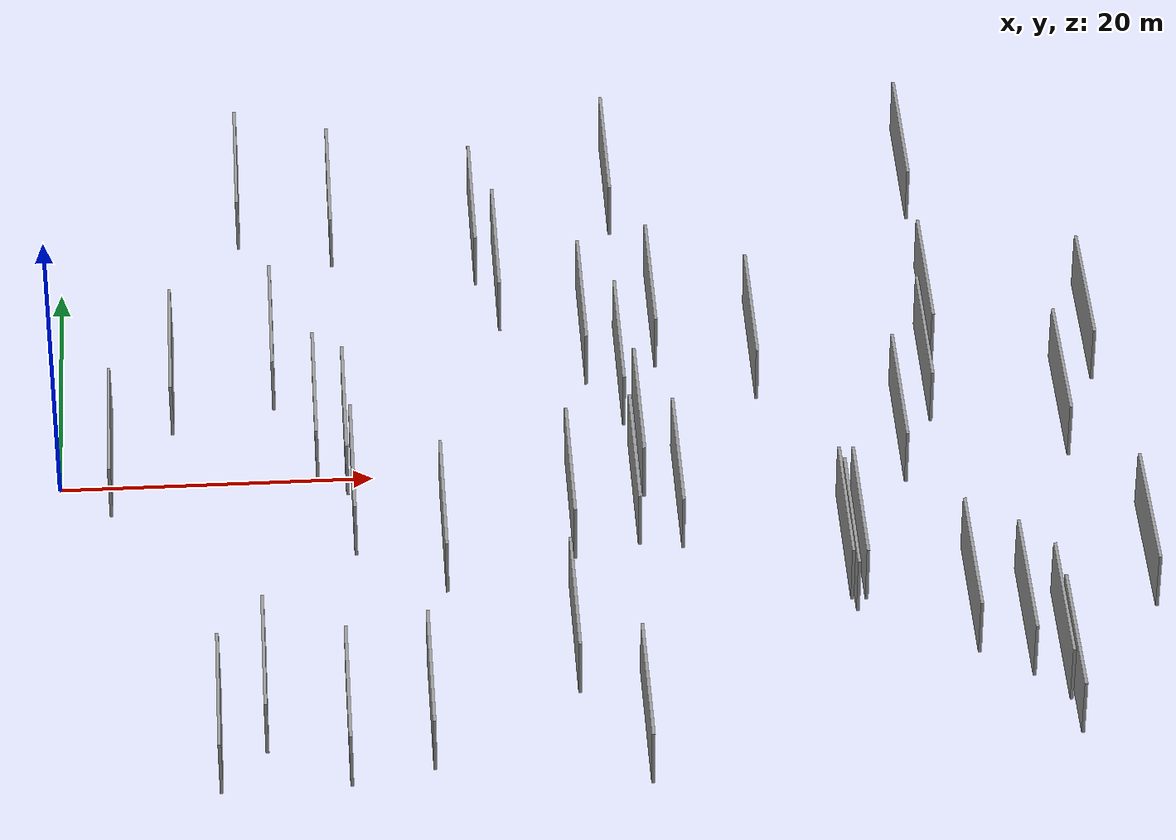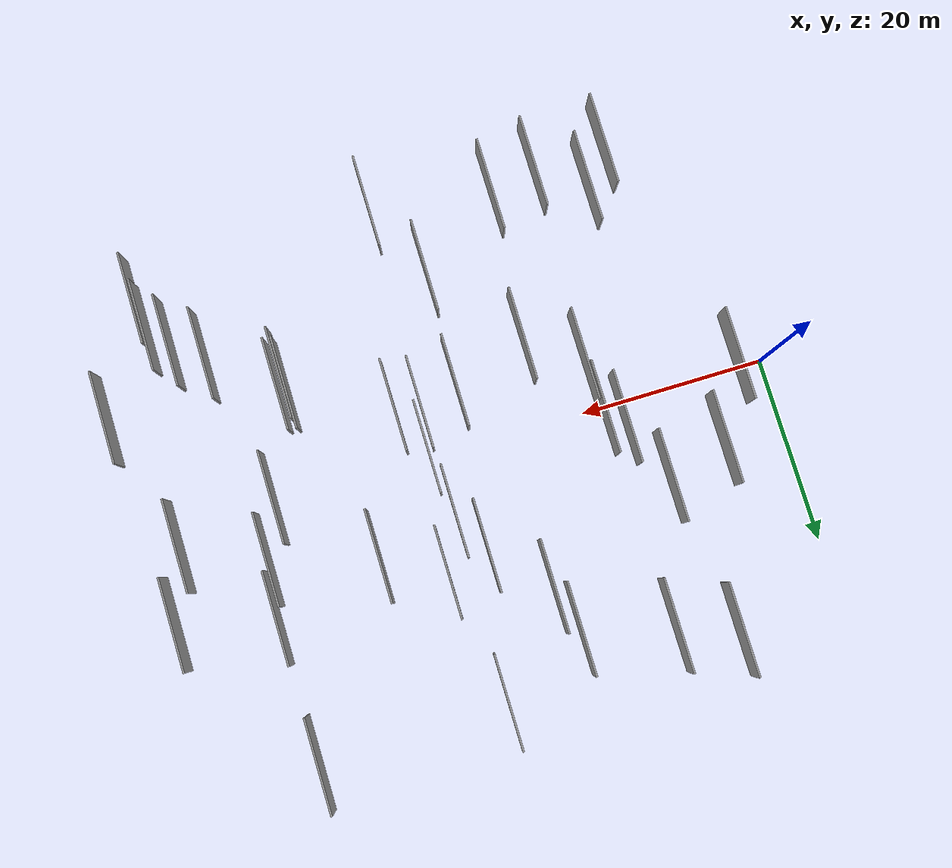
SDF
<sdf version="1.6">
 <world name="default">
  <scene>
   <sky><clouds><speed>12</speed></clouds></sky>
   <ambient>0.4 0.4 0.4 1</ambient>
   <background>0.7 0.7 0.7 1</background>
   <shadows>1</shadows>
  </scene>
  <gravity>0 0 -9.8066</gravity>
  <magnetic_field>6e-06 2.3e-05 -4.2e-05</magnetic_field>
  <physics default="0" name="default_physics" type="ode">
   <ode>
    <solver>
     <type>quick</type>
     <iters>10</iters>
     <sor>1.0</sor>
     <use_dynamic_moi_rescaling>0</use_dynamic_moi_rescaling>
    </solver>
    <constraints>
     <cfm>0</cfm>
     <erp>0.2</erp>
     <contact_max_correcting_vel>100</contact_max_correcting_vel>
     <contact_surface_layer>0.001</contact_surface_layer>
    </constraints>
   </ode>
   <max_step_size>0.004</max_step_size>
   <real_time_factor>1</real_time_factor>
   <real_time_update_rate>250</real_time_update_rate>
  </physics>
  <light name="sun" type="directional">
   <pose>0 0 10 0 0 0</pose>
   <diffuse>0.8 0.8 0.8 1</diffuse>
   <specular>0.2 0.2 0.2 1</specular>
   <attenuation>
    <range>1000</range>
    <constant>0.9</constant>
    <linear>0.01</linear>
    <quadratic>0.001</quadratic>
   </attenuation>
   <direction>-0.5 0.1 -0.9</direction>
  </light>
  <model name="grey_wall_1">
   <static>1</static>
   <pose>49.2912 -11.3729 2.5 0.000000 0.000000 1.570796</pose>
   <link name="link">
    <pose>0 0 2.00 0 0 0</pose>
    <collision name="collision"><geometry><box><size>10.00 0.2 4.00</size></box></geometry></collision>
    <visual name="visual">
     <cast_shadows>0</cast_shadows>
     <geometry><box><size>10.00 0.2 4.00</size></box></geometry>
     <material>
      <script>
       <uri>model://grey_wall/materials/scripts</uri>
       <uri>model://grey_wall/materials/textures</uri>
       <name>vrc/grey_wall</name>
      </script>
     </material>
    </visual>
   </link>
  </model>
  <model name="grey_wall_2">
   <static>1</static>
   <pose>36.4695 -5.4138 2.5 0.000000 0.000000 1.570796</pose>
   <link name="link">
    <pose>0 0 2.00 0 0 0</pose>
    <collision name="collision"><geometry><box><size>10.00 0.2 4.00</size></box></geometry></collision>
    <visual name="visual">
     <cast_shadows>0</cast_shadows>
     <geometry><box><size>10.00 0.2 4.00</size></box></geometry>
     <material>
      <script>
       <uri>model://grey_wall/materials/scripts</uri>
       <uri>model://grey_wall/materials/textures</uri>
       <name>vrc/grey_wall</name>
      </script>
     </material>
    </visual>
   </link>
  </model>
  <model name="grey_wall_3">
   <static>1</static>
   <pose>44.9676 8.5489 2.5 0.000000 0.000000 1.570796</pose>
   <link name="link">
    <pose>0 0 2.00 0 0 0</pose>
    <collision name="collision"><geometry><box><size>10.00 0.2 4.00</size></box></geometry></collision>
    <visual name="visual">
     <cast_shadows>0</cast_shadows>
     <geometry><box><size>10.00 0.2 4.00</size></box></geometry>
     <material>
      <script>
       <uri>model://grey_wall/materials/scripts</uri>
       <uri>model://grey_wall/materials/textures</uri>
       <name>vrc/grey_wall</name>
      </script>
     </material>
    </visual>
   </link>
  </model>
  <model name="grey_wall_4">
   <static>1</static>
   <pose>7.3157 7.1480 2.5 0.000000 0.000000 1.570796</pose>
   <link name="link">
    <pose>0 0 2.00 0 0 0</pose>
    <collision name="collision"><geometry><box><size>10.00 0.2 4.00</size></box></geometry></collision>
    <visual name="visual">
     <cast_shadows>0</cast_shadows>
     <geometry><box><size>10.00 0.2 4.00</size></box></geometry>
     <material>
      <script>
       <uri>model://grey_wall/materials/scripts</uri>
       <uri>model://grey_wall/materials/textures</uri>
       <name>vrc/grey_wall</name>
      </script>
     </material>
    </visual>
   </link>
  </model>
  <model name="grey_wall_5">
   <static>1</static>
   <pose>35.7856 -27.3494 2.5 0.000000 0.000000 1.570796</pose>
   <link name="link">
    <pose>0 0 2.00 0 0 0</pose>
    <collision name="collision"><geometry><box><size>10.00 0.2 4.00</size></box></geometry></collision>
    <visual name="visual">
     <cast_shadows>0</cast_shadows>
     <geometry><box><size>10.00 0.2 4.00</size></box></geometry>
     <material>
      <script>
       <uri>model://grey_wall/materials/scripts</uri>
       <uri>model://grey_wall/materials/textures</uri>
       <name>vrc/grey_wall</name>
      </script>
     </material>
    </visual>
   </link>
  </model>
  <model name="grey_wall_6">
   <static>1</static>
   <pose>3.3829 -0.7247 2.5 0.000000 0.000000 1.570796</pose>
   <link name="link">
    <pose>0 0 2.00 0 0 0</pose>
    <collision name="collision"><geometry><box><size>10.00 0.2 4.00</size></box></geometry></collision>
    <visual name="visual">
     <cast_shadows>0</cast_shadows>
     <geometry><box><size>10.00 0.2 4.00</size></box></geometry>
     <material>
      <script>
       <uri>model://grey_wall/materials/scripts</uri>
       <uri>model://grey_wall/materials/textures</uri>
       <name>vrc/grey_wall</name>
      </script>
     </material>
    </visual>
   </link>
  </model>
  <model name="grey_wall_7">
   <static>1</static>
   <pose>56.6194 11.5562 2.5 0.000000 0.000000 1.570796</pose>
   <link name="link">
    <pose>0 0 2.00 0 0 0</pose>
    <collision name="collision"><geometry><box><size>10.00 0.2 4.00</size></box></geometry></collision>
    <visual name="visual">
     <cast_shadows>0</cast_shadows>
     <geometry><box><size>10.00 0.2 4.00</size></box></geometry>
     <material>
      <script>
       <uri>model://grey_wall/materials/scripts</uri>
       <uri>model://grey_wall/materials/textures</uri>
       <name>vrc/grey_wall</name>
      </script>
     </material>
    </visual>
   </link>
  </model>
  <model name="grey_wall_8">
   <static>1</static>
   <pose>18.6774 -5.3102 2.5 0.000000 0.000000 1.570796</pose>
   <link name="link">
    <pose>0 0 2.00 0 0 0</pose>
    <collision name="collision"><geometry><box><size>10.00 0.2 4.00</size></box></geometry></collision>
    <visual name="visual">
     <cast_shadows>0</cast_shadows>
     <geometry><box><size>10.00 0.2 4.00</size></box></geometry>
     <material>
      <script>
       <uri>model://grey_wall/materials/scripts</uri>
       <uri>model://grey_wall/materials/textures</uri>
       <name>vrc/grey_wall</name>
      </script>
     </material>
    </visual>
   </link>
  </model>
  <model name="grey_wall_9">
   <static>1</static>
   <pose>50.1798 -11.4705 2.5 0.000000 0.000000 1.570796</pose>
   <link name="link">
    <pose>0 0 2.00 0 0 0</pose>
    <collision name="collision"><geometry><box><size>10.00 0.2 4.00</size></box></geometry></collision>
    <visual name="visual">
     <cast_shadows>0</cast_shadows>
     <geometry><box><size>10.00 0.2 4.00</size></box></geometry>
     <material>
      <script>
       <uri>model://grey_wall/materials/scripts</uri>
       <uri>model://grey_wall/materials/textures</uri>
       <name>vrc/grey_wall</name>
      </script>
     </material>
    </visual>
   </link>
  </model>
  <model name="grey_wall_10">
   <static>1</static>
   <pose>62.0942 -24.4419 2.5 0.000000 0.000000 1.570796</pose>
   <link name="link">
    <pose>0 0 2.00 0 0 0</pose>
    <collision name="collision"><geometry><box><size>10.00 0.2 4.00</size></box></geometry></collision>
    <visual name="visual">
     <cast_shadows>0</cast_shadows>
     <geometry><box><size>10.00 0.2 4.00</size></box></geometry>
     <material>
      <script>
       <uri>model://grey_wall/materials/scripts</uri>
       <uri>model://grey_wall/materials/textures</uri>
       <name>vrc/grey_wall</name>
      </script>
     </material>
    </visual>
   </link>
  </model>
  <model name="grey_wall_11">
   <static>1</static>
   <pose>55.9603 5.5726 2.5 0.000000 0.000000 1.570796</pose>
   <link name="link">
    <pose>0 0 2.00 0 0 0</pose>
    <collision name="collision"><geometry><box><size>10.00 0.2 4.00</size></box></geometry></collision>
    <visual name="visual">
     <cast_shadows>0</cast_shadows>
     <geometry><box><size>10.00 0.2 4.00</size></box></geometry>
     <material>
      <script>
       <uri>model://grey_wall/materials/scripts</uri>
       <uri>model://grey_wall/materials/textures</uri>
       <name>vrc/grey_wall</name>
      </script>
     </material>
    </visual>
   </link>
  </model>
  <model name="grey_wall_12">
   <static>1</static>
   <pose>59.7716 -19.1227 2.5 0.000000 0.000000 1.570796</pose>
   <link name="link">
    <pose>0 0 2.00 0 0 0</pose>
    <collision name="collision"><geometry><box><size>10.00 0.2 4.00</size></box></geometry></collision>
    <visual name="visual">
     <cast_shadows>0</cast_shadows>
     <geometry><box><size>10.00 0.2 4.00</size></box></geometry>
     <material>
      <script>
       <uri>model://grey_wall/materials/scripts</uri>
       <uri>model://grey_wall/materials/textures</uri>
       <name>vrc/grey_wall</name>
      </script>
     </material>
    </visual>
   </link>
  </model>
  <model name="grey_wall_13">
   <static>1</static>
   <pose>66.8213 9.1804 2.5 0.000000 0.000000 1.570796</pose>
   <link name="link">
    <pose>0 0 2.00 0 0 0</pose>
    <collision name="collision"><geometry><box><size>10.00 0.2 4.00</size></box></geometry></collision>
    <visual name="visual">
     <cast_shadows>0</cast_shadows>
     <geometry><box><size>10.00 0.2 4.00</size></box></geometry>
     <material>
      <script>
       <uri>model://grey_wall/materials/scripts</uri>
       <uri>model://grey_wall/materials/textures</uri>
       <name>vrc/grey_wall</name>
      </script>
     </material>
    </visual>
   </link>
  </model>
  <model name="grey_wall_14">
   <static>1</static>
   <pose>61.7658 -21.4161 2.5 0.000000 0.000000 1.570796</pose>
   <link name="link">
    <pose>0 0 2.00 0 0 0</pose>
    <collision name="collision"><geometry><box><size>10.00 0.2 4.00</size></box></geometry></collision>
    <visual name="visual">
     <cast_shadows>0</cast_shadows>
     <geometry><box><size>10.00 0.2 4.00</size></box></geometry>
     <material>
      <script>
       <uri>model://grey_wall/materials/scripts</uri>
       <uri>model://grey_wall/materials/textures</uri>
       <name>vrc/grey_wall</name>
      </script>
     </material>
    </visual>
   </link>
  </model>
  <model name="grey_wall_15">
   <static>1</static>
   <pose>53.7543 -0.3643 2.5 0.000000 0.000000 1.570796</pose>
   <link name="link">
    <pose>0 0 2.00 0 0 0</pose>
    <collision name="collision"><geometry><box><size>10.00 0.2 4.00</size></box></geometry></collision>
    <visual name="visual">
     <cast_shadows>0</cast_shadows>
     <geometry><box><size>10.00 0.2 4.00</size></box></geometry>
     <material>
      <script>
       <uri>model://grey_wall/materials/scripts</uri>
       <uri>model://grey_wall/materials/textures</uri>
       <name>vrc/grey_wall</name>
      </script>
     </material>
    </visual>
   </link>
  </model>
  <model name="grey_wall_16">
   <static>1</static>
   <pose>18.3371 0.5597 2.5 0.000000 0.000000 1.570796</pose>
   <link name="link">
    <pose>0 0 2.00 0 0 0</pose>
    <collision name="collision"><geometry><box><size>10.00 0.2 4.00</size></box></geometry></collision>
    <visual name="visual">
     <cast_shadows>0</cast_shadows>
     <geometry><box><size>10.00 0.2 4.00</size></box></geometry>
     <material>
      <script>
       <uri>model://grey_wall/materials/scripts</uri>
       <uri>model://grey_wall/materials/textures</uri>
       <name>vrc/grey_wall</name>
      </script>
     </material>
    </visual>
   </link>
  </model>
  <model name="grey_wall_17">
   <static>1</static>
   <pose>12.7365 -23.2910 2.5 0.000000 0.000000 1.570796</pose>
   <link name="link">
    <pose>0 0 2.00 0 0 0</pose>
    <collision name="collision"><geometry><box><size>10.00 0.2 4.00</size></box></geometry></collision>
    <visual name="visual">
     <cast_shadows>0</cast_shadows>
     <geometry><box><size>10.00 0.2 4.00</size></box></geometry>
     <material>
      <script>
       <uri>model://grey_wall/materials/scripts</uri>
       <uri>model://grey_wall/materials/textures</uri>
       <name>vrc/grey_wall</name>
      </script>
     </material>
    </visual>
   </link>
  </model>
  <model name="grey_wall_18">
   <static>1</static>
   <pose>36.5861 26.3252 2.5 0.000000 0.000000 1.570796</pose>
   <link name="link">
    <pose>0 0 2.00 0 0 0</pose>
    <collision name="collision"><geometry><box><size>10.00 0.2 4.00</size></box></geometry></collision>
    <visual name="visual">
     <cast_shadows>0</cast_shadows>
     <geometry><box><size>10.00 0.2 4.00</size></box></geometry>
     <material>
      <script>
       <uri>model://grey_wall/materials/scripts</uri>
       <uri>model://grey_wall/materials/textures</uri>
       <name>vrc/grey_wall</name>
      </script>
     </material>
    </visual>
   </link>
  </model>
  <model name="grey_wall_19">
   <static>1</static>
   <pose>11.8592 26.2166 2.5 0.000000 0.000000 1.570796</pose>
   <link name="link">
    <pose>0 0 2.00 0 0 0</pose>
    <collision name="collision"><geometry><box><size>10.00 0.2 4.00</size></box></geometry></collision>
    <visual name="visual">
     <cast_shadows>0</cast_shadows>
     <geometry><box><size>10.00 0.2 4.00</size></box></geometry>
     <material>
      <script>
       <uri>model://grey_wall/materials/scripts</uri>
       <uri>model://grey_wall/materials/textures</uri>
       <name>vrc/grey_wall</name>
      </script>
     </material>
    </visual>
   </link>
  </model>
  <model name="grey_wall_20">
   <static>1</static>
   <pose>56.5438 26.7962 2.5 0.000000 0.000000 1.570796</pose>
   <link name="link">
    <pose>0 0 2.00 0 0 0</pose>
    <collision name="collision"><geometry><box><size>10.00 0.2 4.00</size></box></geometry></collision>
    <visual name="visual">
     <cast_shadows>0</cast_shadows>
     <geometry><box><size>10.00 0.2 4.00</size></box></geometry>
     <material>
      <script>
       <uri>model://grey_wall/materials/scripts</uri>
       <uri>model://grey_wall/materials/textures</uri>
       <name>vrc/grey_wall</name>
      </script>
     </material>
    </visual>
   </link>
  </model>
  <model name="grey_wall_21">
   <static>1</static>
   <pose>64.3888 1.6308 2.5 0.000000 0.000000 1.570796</pose>
   <link name="link">
    <pose>0 0 2.00 0 0 0</pose>
    <collision name="collision"><geometry><box><size>10.00 0.2 4.00</size></box></geometry></collision>
    <visual name="visual">
     <cast_shadows>0</cast_shadows>
     <geometry><box><size>10.00 0.2 4.00</size></box></geometry>
     <material>
      <script>
       <uri>model://grey_wall/materials/scripts</uri>
       <uri>model://grey_wall/materials/textures</uri>
       <name>vrc/grey_wall</name>
      </script>
     </material>
    </visual>
   </link>
  </model>
  <model name="grey_wall_22">
   <static>1</static>
   <pose>68.1017 -13.1992 2.5 0.000000 0.000000 1.570796</pose>
   <link name="link">
    <pose>0 0 2.00 0 0 0</pose>
    <collision name="collision"><geometry><box><size>10.00 0.2 4.00</size></box></geometry></collision>
    <visual name="visual">
     <cast_shadows>0</cast_shadows>
     <geometry><box><size>10.00 0.2 4.00</size></box></geometry>
     <material>
      <script>
       <uri>model://grey_wall/materials/scripts</uri>
       <uri>model://grey_wall/materials/textures</uri>
       <name>vrc/grey_wall</name>
      </script>
     </material>
    </visual>
   </link>
  </model>
  <model name="grey_wall_23">
   <static>1</static>
   <pose>37.0577 -0.7599 2.5 0.000000 0.000000 1.570796</pose>
   <link name="link">
    <pose>0 0 2.00 0 0 0</pose>
    <collision name="collision"><geometry><box><size>10.00 0.2 4.00</size></box></geometry></collision>
    <visual name="visual">
     <cast_shadows>0</cast_shadows>
     <geometry><box><size>10.00 0.2 4.00</size></box></geometry>
     <material>
      <script>
       <uri>model://grey_wall/materials/scripts</uri>
       <uri>model://grey_wall/materials/textures</uri>
       <name>vrc/grey_wall</name>
      </script>
     </material>
    </visual>
   </link>
  </model>
  <model name="grey_wall_24">
   <static>1</static>
   <pose>49.5408 -12.4997 2.5 0.000000 0.000000 1.570796</pose>
   <link name="link">
    <pose>0 0 2.00 0 0 0</pose>
    <collision name="collision"><geometry><box><size>10.00 0.2 4.00</size></box></geometry></collision>
    <visual name="visual">
     <cast_shadows>0</cast_shadows>
     <geometry><box><size>10.00 0.2 4.00</size></box></geometry>
     <material>
      <script>
       <uri>model://grey_wall/materials/scripts</uri>
       <uri>model://grey_wall/materials/textures</uri>
       <name>vrc/grey_wall</name>
      </script>
     </material>
    </visual>
   </link>
  </model>
  <model name="grey_wall_25">
   <static>1</static>
   <pose>34.1021 10.6718 2.5 0.000000 0.000000 1.570796</pose>
   <link name="link">
    <pose>0 0 2.00 0 0 0</pose>
    <collision name="collision"><geometry><box><size>10.00 0.2 4.00</size></box></geometry></collision>
    <visual name="visual">
     <cast_shadows>0</cast_shadows>
     <geometry><box><size>10.00 0.2 4.00</size></box></geometry>
     <material>
      <script>
       <uri>model://grey_wall/materials/scripts</uri>
       <uri>model://grey_wall/materials/textures</uri>
       <name>vrc/grey_wall</name>
      </script>
     </material>
    </visual>
   </link>
  </model>
  <model name="grey_wall_26">
   <static>1</static>
   <pose>16.4777 2.1630 2.5 0.000000 0.000000 1.570796</pose>
   <link name="link">
    <pose>0 0 2.00 0 0 0</pose>
    <collision name="collision"><geometry><box><size>10.00 0.2 4.00</size></box></geometry></collision>
    <visual name="visual">
     <cast_shadows>0</cast_shadows>
     <geometry><box><size>10.00 0.2 4.00</size></box></geometry>
     <material>
      <script>
       <uri>model://grey_wall/materials/scripts</uri>
       <uri>model://grey_wall/materials/textures</uri>
       <name>vrc/grey_wall</name>
      </script>
     </material>
    </visual>
   </link>
  </model>
  <model name="grey_wall_27">
   <static>1</static>
   <pose>28.7744 16.5775 2.5 0.000000 0.000000 1.570796</pose>
   <link name="link">
    <pose>0 0 2.00 0 0 0</pose>
    <collision name="collision"><geometry><box><size>10.00 0.2 4.00</size></box></geometry></collision>
    <visual name="visual">
     <cast_shadows>0</cast_shadows>
     <geometry><box><size>10.00 0.2 4.00</size></box></geometry>
     <material>
      <script>
       <uri>model://grey_wall/materials/scripts</uri>
       <uri>model://grey_wall/materials/textures</uri>
       <name>vrc/grey_wall</name>
      </script>
     </material>
    </visual>
   </link>
  </model>
  <model name="grey_wall_28">
   <static>1</static>
   <pose>13.8453 9.2939 2.5 0.000000 0.000000 1.570796</pose>
   <link name="link">
    <pose>0 0 2.00 0 0 0</pose>
    <collision name="collision"><geometry><box><size>10.00 0.2 4.00</size></box></geometry></collision>
    <visual name="visual">
     <cast_shadows>0</cast_shadows>
     <geometry><box><size>10.00 0.2 4.00</size></box></geometry>
     <material>
      <script>
       <uri>model://grey_wall/materials/scripts</uri>
       <uri>model://grey_wall/materials/textures</uri>
       <name>vrc/grey_wall</name>
      </script>
     </material>
    </visual>
   </link>
  </model>
  <model name="grey_wall_29">
   <static>1</static>
   <pose>24.2351 -9.1933 2.5 0.000000 0.000000 1.570796</pose>
   <link name="link">
    <pose>0 0 2.00 0 0 0</pose>
    <collision name="collision"><geometry><box><size>10.00 0.2 4.00</size></box></geometry></collision>
    <visual name="visual">
     <cast_shadows>0</cast_shadows>
     <geometry><box><size>10.00 0.2 4.00</size></box></geometry>
     <material>
      <script>
       <uri>model://grey_wall/materials/scripts</uri>
       <uri>model://grey_wall/materials/textures</uri>
       <name>vrc/grey_wall</name>
      </script>
     </material>
    </visual>
   </link>
  </model>
  <model name="grey_wall_30">
   <static>1</static>
   <pose>36.2458 6.3484 2.5 0.000000 0.000000 1.570796</pose>
   <link name="link">
    <pose>0 0 2.00 0 0 0</pose>
    <collision name="collision"><geometry><box><size>10.00 0.2 4.00</size></box></geometry></collision>
    <visual name="visual">
     <cast_shadows>0</cast_shadows>
     <geometry><box><size>10.00 0.2 4.00</size></box></geometry>
     <material>
      <script>
       <uri>model://grey_wall/materials/scripts</uri>
       <uri>model://grey_wall/materials/textures</uri>
       <name>vrc/grey_wall</name>
      </script>
     </material>
    </visual>
   </link>
  </model>
  <model name="grey_wall_31">
   <static>1</static>
   <pose>22.7909 -25.3571 2.5 0.000000 0.000000 1.570796</pose>
   <link name="link">
    <pose>0 0 2.00 0 0 0</pose>
    <collision name="collision"><geometry><box><size>10.00 0.2 4.00</size></box></geometry></collision>
    <visual name="visual">
     <cast_shadows>0</cast_shadows>
     <geometry><box><size>10.00 0.2 4.00</size></box></geometry>
     <material>
      <script>
       <uri>model://grey_wall/materials/scripts</uri>
       <uri>model://grey_wall/materials/textures</uri>
       <name>vrc/grey_wall</name>
      </script>
     </material>
    </visual>
   </link>
  </model>
  <model name="grey_wall_32">
   <static>1</static>
   <pose>56.6520 -16.8185 2.5 0.000000 0.000000 1.570796</pose>
   <link name="link">
    <pose>0 0 2.00 0 0 0</pose>
    <collision name="collision"><geometry><box><size>10.00 0.2 4.00</size></box></geometry></collision>
    <visual name="visual">
     <cast_shadows>0</cast_shadows>
     <geometry><box><size>10.00 0.2 4.00</size></box></geometry>
     <material>
      <script>
       <uri>model://grey_wall/materials/scripts</uri>
       <uri>model://grey_wall/materials/textures</uri>
       <name>vrc/grey_wall</name>
      </script>
     </material>
    </visual>
   </link>
  </model>
  <model name="grey_wall_33">
   <static>1</static>
   <pose>32.3443 -6.5044 2.5 0.000000 0.000000 1.570796</pose>
   <link name="link">
    <pose>0 0 2.00 0 0 0</pose>
    <collision name="collision"><geometry><box><size>10.00 0.2 4.00</size></box></geometry></collision>
    <visual name="visual">
     <cast_shadows>0</cast_shadows>
     <geometry><box><size>10.00 0.2 4.00</size></box></geometry>
     <material>
      <script>
       <uri>model://grey_wall/materials/scripts</uri>
       <uri>model://grey_wall/materials/textures</uri>
       <name>vrc/grey_wall</name>
      </script>
     </material>
    </visual>
   </link>
  </model>
  <model name="grey_wall_34">
   <static>1</static>
   <pose>39.1745 -5.8962 2.5 0.000000 0.000000 1.570796</pose>
   <link name="link">
    <pose>0 0 2.00 0 0 0</pose>
    <collision name="collision"><geometry><box><size>10.00 0.2 4.00</size></box></geometry></collision>
    <visual name="visual">
     <cast_shadows>0</cast_shadows>
     <geometry><box><size>10.00 0.2 4.00</size></box></geometry>
     <material>
      <script>
       <uri>model://grey_wall/materials/scripts</uri>
       <uri>model://grey_wall/materials/textures</uri>
       <name>vrc/grey_wall</name>
      </script>
     </material>
    </visual>
   </link>
  </model>
  <model name="grey_wall_35">
   <static>1</static>
   <pose>31.9005 -19.0306 2.5 0.000000 0.000000 1.570796</pose>
   <link name="link">
    <pose>0 0 2.00 0 0 0</pose>
    <collision name="collision"><geometry><box><size>10.00 0.2 4.00</size></box></geometry></collision>
    <visual name="visual">
     <cast_shadows>0</cast_shadows>
     <geometry><box><size>10.00 0.2 4.00</size></box></geometry>
     <material>
      <script>
       <uri>model://grey_wall/materials/scripts</uri>
       <uri>model://grey_wall/materials/textures</uri>
       <name>vrc/grey_wall</name>
      </script>
     </material>
    </visual>
   </link>
  </model>
  <model name="grey_wall_36">
   <static>1</static>
   <pose>17.7483 -26.4797 2.5 0.000000 0.000000 1.570796</pose>
   <link name="link">
    <pose>0 0 2.00 0 0 0</pose>
    <collision name="collision"><geometry><box><size>10.00 0.2 4.00</size></box></geometry></collision>
    <visual name="visual">
     <cast_shadows>0</cast_shadows>
     <geometry><box><size>10.00 0.2 4.00</size></box></geometry>
     <material>
      <script>
       <uri>model://grey_wall/materials/scripts</uri>
       <uri>model://grey_wall/materials/textures</uri>
       <name>vrc/grey_wall</name>
      </script>
     </material>
    </visual>
   </link>
  </model>
  <model name="grey_wall_37">
   <static>1</static>
   <pose>38.6764 12.1189 2.5 0.000000 0.000000 1.570796</pose>
   <link name="link">
    <pose>0 0 2.00 0 0 0</pose>
    <collision name="collision"><geometry><box><size>10.00 0.2 4.00</size></box></geometry></collision>
    <visual name="visual">
     <cast_shadows>0</cast_shadows>
     <geometry><box><size>10.00 0.2 4.00</size></box></geometry>
     <material>
      <script>
       <uri>model://grey_wall/materials/scripts</uri>
       <uri>model://grey_wall/materials/textures</uri>
       <name>vrc/grey_wall</name>
      </script>
     </material>
    </visual>
   </link>
  </model>
  <model name="grey_wall_38">
   <static>1</static>
   <pose>17.9949 23.9394 2.5 0.000000 0.000000 1.570796</pose>
   <link name="link">
    <pose>0 0 2.00 0 0 0</pose>
    <collision name="collision"><geometry><box><size>10.00 0.2 4.00</size></box></geometry></collision>
    <visual name="visual">
     <cast_shadows>0</cast_shadows>
     <geometry><box><size>10.00 0.2 4.00</size></box></geometry>
     <material>
      <script>
       <uri>model://grey_wall/materials/scripts</uri>
       <uri>model://grey_wall/materials/textures</uri>
       <name>vrc/grey_wall</name>
      </script>
     </material>
    </visual>
   </link>
  </model>
  <model name="grey_wall_39">
   <static>1</static>
   <pose>27.4268 21.4232 2.5 0.000000 0.000000 1.570796</pose>
   <link name="link">
    <pose>0 0 2.00 0 0 0</pose>
    <collision name="collision"><geometry><box><size>10.00 0.2 4.00</size></box></geometry></collision>
    <visual name="visual">
     <cast_shadows>0</cast_shadows>
     <geometry><box><size>10.00 0.2 4.00</size></box></geometry>
     <material>
      <script>
       <uri>model://grey_wall/materials/scripts</uri>
       <uri>model://grey_wall/materials/textures</uri>
       <name>vrc/grey_wall</name>
      </script>
     </material>
    </visual>
   </link>
  </model>
  <model name="grey_wall_40">
   <static>1</static>
   <pose>9.9268 -26.6853 2.5 0.000000 0.000000 1.570796</pose>
   <link name="link">
    <pose>0 0 2.00 0 0 0</pose>
    <collision name="collision"><geometry><box><size>10.00 0.2 4.00</size></box></geometry></collision>
    <visual name="visual">
     <cast_shadows>0</cast_shadows>
     <geometry><box><size>10.00 0.2 4.00</size></box></geometry>
     <material>
      <script>
       <uri>model://grey_wall/materials/scripts</uri>
       <uri>model://grey_wall/materials/textures</uri>
       <name>vrc/grey_wall</name>
      </script>
     </material>
    </visual>
   </link>
  </model>
 </world>
</sdf>
